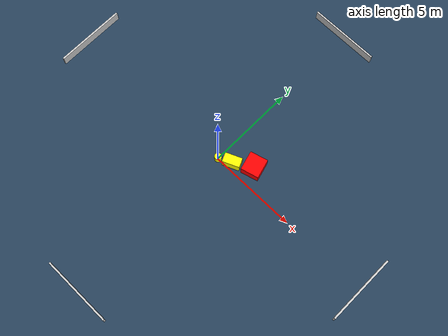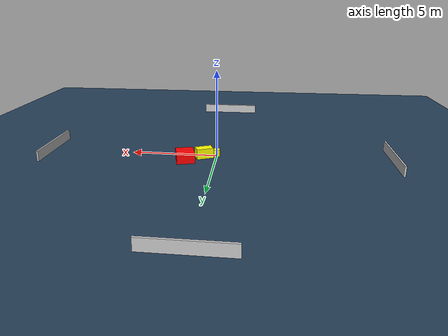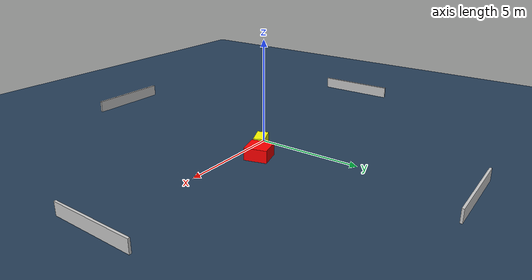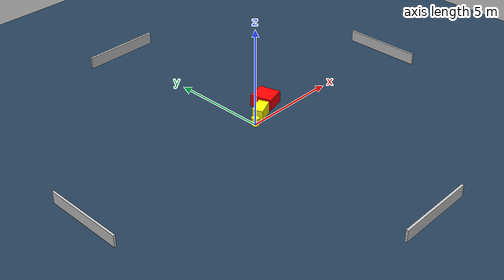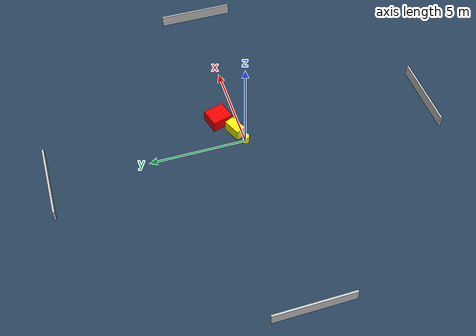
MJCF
<?xml version="1.0" ?>
<mujoco model="generated_environment">
  <option timestep="0.01" integrator="RK4" cone="elliptic"/>
  <default>
    <geom density="1"/>
  </default>
  <asset>
    <texture builtin="gradient" height="3072" name="skybox" rgb1="0.3 0.5 0.7" rgb2="0 0 0" type="skybox" width="512"/>
    <texture builtin="checker" height="300" name="groundplane" rgb1="0.2 0.3 0.4" rgb2="0.1 0.2 0.3" type="2d" width="300"/>
    <material name="groundplane" reflectance="0.2" texrepeat="5 5" texture="groundplane"/>
  </asset>
  <worldbody>
    <light dir="0 0 -1" directional="true" pos="0 0 1.5"/>
    <geom condim="3" friction="0.5 0.005 0.001" material="groundplane" name="floor" pos="0 0 0" size="0 0 0.05" type="plane"/>
    <body name="walls">
      <geom name="wall_1" condim="4" pos="-10.0 0.0 0.3" rgba="0.800000011920929 0.800000011920929 0.800000011920929 1.0" size="0.05 2.0 0.3" type="box"/>
      <geom name="wall_2" condim="4" pos="10.0 0.0 0.3" rgba="0.800000011920929 0.800000011920929 0.800000011920929 1.0" size="0.05 2.0 0.3" type="box"/>
      <geom name="wall_3" condim="4" pos="0.0 -10.0 0.3" rgba="0.800000011920929 0.800000011920929 0.800000011920929 1.0" size="2.0 0.05 0.3" type="box"/>
      <geom name="wall_4" condim="4" pos="0.0 10.0 0.3" rgba="0.800000011920929 0.800000011920929 0.800000011920929 1.0" size="2.0 0.05 0.3" type="box"/>
    </body>
    <body name="robot">
      <joint name="joint_x" type="slide" pos="0 0 0" axis="1 0 0"/>
      <joint name="joint_y" type="slide" pos="0 0 0" axis="0 1 0"/>
      <geom name="robot" type="cylinder" pos="0.0 0.0 0.2" size="0.2 0.2 0.0" mass="5.0" friction="1.0 0.005 0.0001" condim="4" rgba="1.0 1.0 0.0 1.0"/>
    </body>
    <body name="obstacle_1_movable">
      <geom name="obstacle_1_movable" condim="4" pos="0.7108128648274379 0.3357933990227515 0.3" euler="0 0 293.83128261936594" friction="0.0 0.005 0.001" rgba="1.0 1.0 0.0 1.0" size="0.2710268101746174 0.483769060344277 0.3" type="box" mass="0.1"/>
      <joint type="free"/>
    </body>
    <body name="obstacle_2_static">
      <geom name="obstacle_2_static" condim="4" pos="1.716623680780558 0.9614085783206082 0.3" euler="0 0 285.5057225224919" friction="0.0 0.005 0.001" rgba="1.0 0.0 0.0 1.0" size="0.5483337745020693 0.5086057934154151 0.3" type="box"/>
    </body>
  </worldbody>
  <actuator>
    <motor name="actuator_x" joint="joint_x" gear="1" ctrlrange="-1 1"/>
    <motor name="actuator_y" joint="joint_y" gear="1" ctrlrange="-1 1"/>
  </actuator>
</mujoco>
